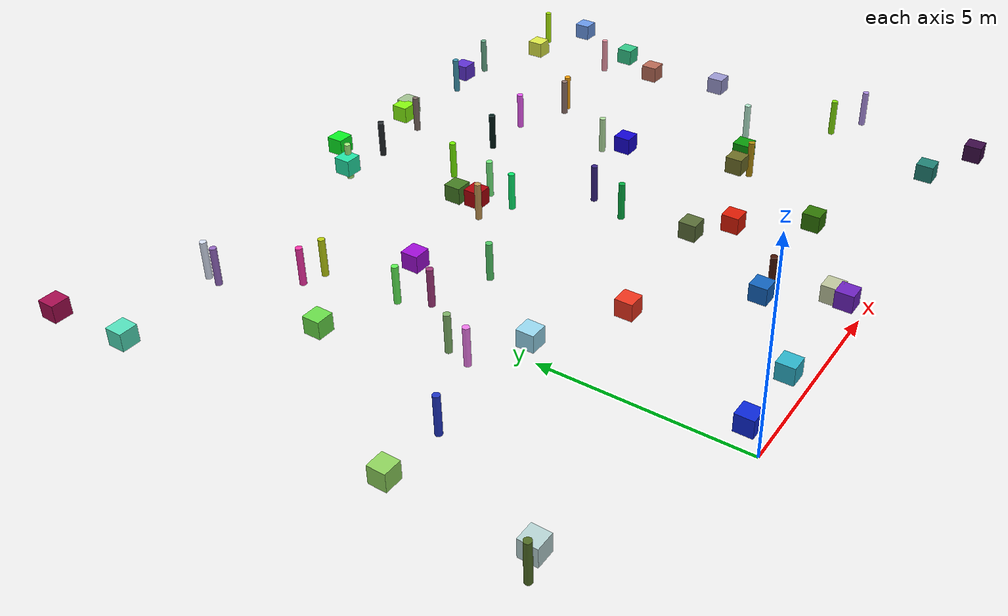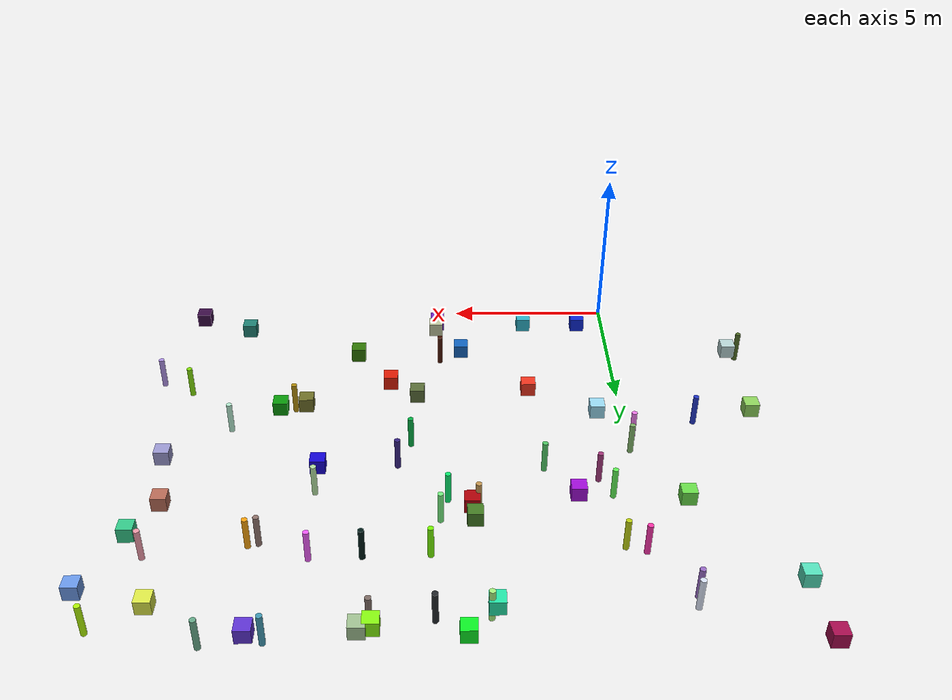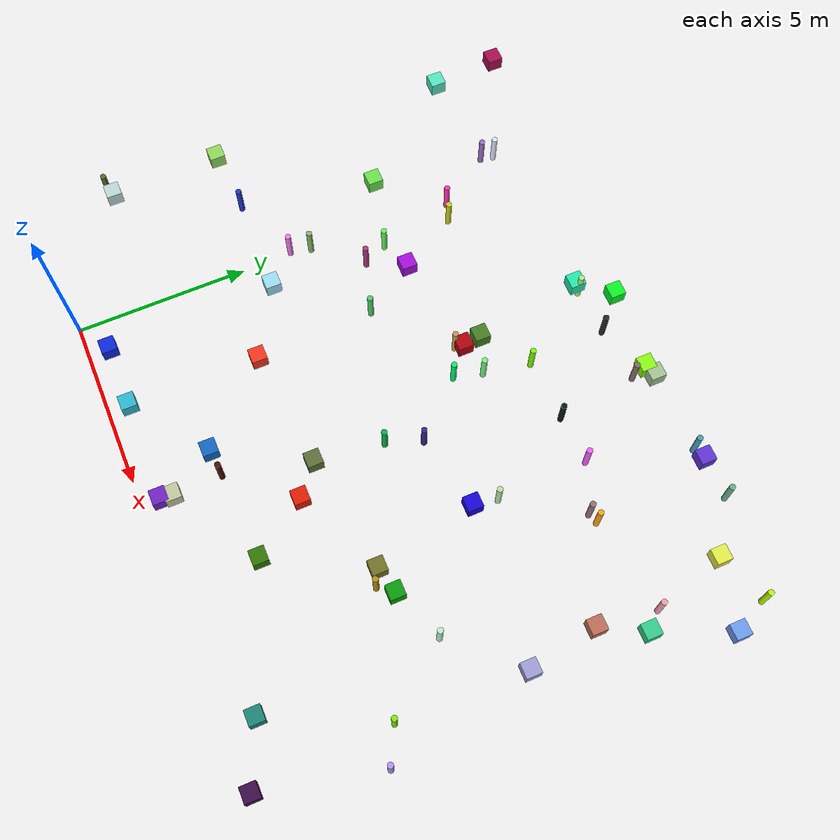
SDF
<sdf version="1.7">
 <world name="warehouse">
  <model name="ground_plane">
   <static>true</static>
   <link name="link">
    <collision name="collision">
     <geometry><plane><normal>0.0 0.0 1</normal><size>1 1</size></plane></geometry>
    </collision>
   </link>
  </model>
  <model name="unit_box_0">
   <static>true</static>
   <pose>4.86 14.7 0 0 0 0</pose>
   <link name="link">
    <collision name="collision">
     <geometry><box><size>0.450000 0.450000 0.450000</size></box></geometry>
    </collision>
    <visual name="visual">
     <geometry><box><size>0.450000 0.450000 0.450000</size></box></geometry>
     <material>
      <ambient>0.0440894479829993 0.9466540511849011 0.1446051926658367 1</ambient>
      <diffuse>0.0440894479829993 0.9466540511849011 0.1446051926658367 1</diffuse>
      <script><uri>file://media/materials/scripts/gazebo.material</uri><name>Gazebo/RandomColor0</name></script>
     </material>
    </visual>
   </link>
  </model>
  <model name="unit_box_1">
   <static>true</static>
   <pose>4.12 13.78 0 0 0 0</pose>
   <link name="link">
    <collision name="collision">
     <geometry><box><size>0.450000 0.450000 0.450000</size></box></geometry>
    </collision>
    <visual name="visual">
     <geometry><box><size>0.450000 0.450000 0.450000</size></box></geometry>
     <material>
      <ambient>0.13936809683720985 0.9011202749563527 0.6622935414420614 1</ambient>
      <diffuse>0.13936809683720985 0.9011202749563527 0.6622935414420614 1</diffuse>
      <script><uri>file://media/materials/scripts/gazebo.material</uri><name>Gazebo/RandomColor1</name></script>
     </material>
    </visual>
   </link>
  </model>
  <model name="unit_cylinder_1">
   <static>true</static>
   <pose>7.35 14.08 0 0 0 0</pose>
   <link name="link">
    <collision name="collision">
     <geometry><cylinder><radius>0.085000</radius><length>1.000000</length></cylinder></geometry>
    </collision>
    <visual name="visual">
     <geometry><cylinder><radius>0.085000</radius><length>1.000000</length></cylinder></geometry>
     <material>
      <ambient>0.4892112773507925 0.4217328960785478 0.3929808659382936 1</ambient>
      <diffuse>0.4892112773507925 0.4217328960785478 0.3929808659382936 1</diffuse>
      <script><uri>file://media/materials/scripts/gazebo.material</uri><name>Gazebo/RandomColor1</name></script>
     </material>
    </visual>
   </link>
  </model>
  <model name="unit_box_2">
   <static>true</static>
   <pose>5.68 0.53 0 0 0 0</pose>
   <link name="link">
    <collision name="collision">
     <geometry><box><size>0.450000 0.450000 0.450000</size></box></geometry>
    </collision>
    <visual name="visual">
     <geometry><box><size>0.450000 0.450000 0.450000</size></box></geometry>
     <material>
      <ambient>0.4295884488853311 0.1320019734991711 0.7548802276800174 1</ambient>
      <diffuse>0.4295884488853311 0.1320019734991711 0.7548802276800174 1</diffuse>
      <script><uri>file://media/materials/scripts/gazebo.material</uri><name>Gazebo/RandomColor2</name></script>
     </material>
    </visual>
   </link>
  </model>
  <model name="unit_cylinder_4">
   <static>true</static>
   <pose>5.69 13.94 0 0 0 0</pose>
   <link name="link">
    <collision name="collision">
     <geometry><cylinder><radius>0.085000</radius><length>1.000000</length></cylinder></geometry>
    </collision>
    <visual name="visual">
     <geometry><cylinder><radius>0.085000</radius><length>1.000000</length></cylinder></geometry>
     <material>
      <ambient>0.1341796096800415 0.15039961002780222 0.16592342121938808 1</ambient>
      <diffuse>0.1341796096800415 0.15039961002780222 0.16592342121938808 1</diffuse>
      <script><uri>file://media/materials/scripts/gazebo.material</uri><name>Gazebo/RandomColor4</name></script>
     </material>
    </visual>
   </link>
  </model>
  <model name="unit_cylinder_5">
   <static>true</static>
   <pose>13.59 4.13 0 0 0 0</pose>
   <link name="link">
    <collision name="collision">
     <geometry><cylinder><radius>0.085000</radius><length>1.000000</length></cylinder></geometry>
    </collision>
    <visual name="visual">
     <geometry><cylinder><radius>0.085000</radius><length>1.000000</length></cylinder></geometry>
     <material>
      <ambient>0.5082832375055166 0.8693185021433103 0.04404943998753352 1</ambient>
      <diffuse>0.5082832375055166 0.8693185021433103 0.04404943998753352 1</diffuse>
      <script><uri>file://media/materials/scripts/gazebo.material</uri><name>Gazebo/RandomColor5</name></script>
     </material>
    </visual>
   </link>
  </model>
  <model name="unit_box_6">
   <static>true</static>
   <pose>0.7 5.61 0 0 0 0</pose>
   <link name="link">
    <collision name="collision">
     <geometry><box><size>0.450000 0.450000 0.450000</size></box></geometry>
    </collision>
    <visual name="visual">
     <geometry><box><size>0.450000 0.450000 0.450000</size></box></geometry>
     <material>
      <ambient>0.6019330902248561 0.8545485791242867 0.9463620129433569 1</ambient>
      <diffuse>0.6019330902248561 0.8545485791242867 0.9463620129433569 1</diffuse>
      <script><uri>file://media/materials/scripts/gazebo.material</uri><name>Gazebo/RandomColor6</name></script>
     </material>
    </visual>
   </link>
  </model>
  <model name="unit_cylinder_7">
   <static>true</static>
   <pose>5.82 11.59 0 0 0 0</pose>
   <link name="link">
    <collision name="collision">
     <geometry><cylinder><radius>0.085000</radius><length>1.000000</length></cylinder></geometry>
    </collision>
    <visual name="visual">
     <geometry><cylinder><radius>0.085000</radius><length>1.000000</length></cylinder></geometry>
     <material>
      <ambient>0.4614413156698295 0.9580878596213448 0.015944803376221728 1</ambient>
      <diffuse>0.4614413156698295 0.9580878596213448 0.015944803376221728 1</diffuse>
      <script><uri>file://media/materials/scripts/gazebo.material</uri><name>Gazebo/RandomColor7</name></script>
     </material>
    </visual>
   </link>
  </model>
  <model name="unit_box_8">
   <static>true</static>
   <pose>4.89 2.23 0 0 0 0</pose>
   <link name="link">
    <collision name="collision">
     <geometry><box><size>0.450000 0.450000 0.450000</size></box></geometry>
    </collision>
    <visual name="visual">
     <geometry><box><size>0.450000 0.450000 0.450000</size></box></geometry>
     <material>
      <ambient>0.0728688957714253 0.39289916852559303 0.7492032021296913 1</ambient>
      <diffuse>0.0728688957714253 0.39289916852559303 0.7492032021296913 1</diffuse>
      <script><uri>file://media/materials/scripts/gazebo.material</uri><name>Gazebo/RandomColor8</name></script>
     </material>
    </visual>
   </link>
  </model>
  <model name="unit_cylinder_8">
   <static>true</static>
   <pose>12.03 6.05 0 0 0 0</pose>
   <link name="link">
    <collision name="collision">
     <geometry><cylinder><radius>0.085000</radius><length>1.000000</length></cylinder></geometry>
    </collision>
    <visual name="visual">
     <geometry><cylinder><radius>0.085000</radius><length>1.000000</length></cylinder></geometry>
     <material>
      <ambient>0.7076495968020946 0.9175697631631726 0.8125382040000438 1</ambient>
      <diffuse>0.7076495968020946 0.9175697631631726 0.8125382040000438 1</diffuse>
      <script><uri>file://media/materials/scripts/gazebo.material</uri><name>Gazebo/RandomColor8</name></script>
     </material>
    </visual>
   </link>
  </model>
  <model name="unit_box_10">
   <static>true</static>
   <pose>4.6 10.53 0 0 0 0</pose>
   <link name="link">
    <collision name="collision">
     <geometry><box><size>0.450000 0.450000 0.450000</size></box></geometry>
    </collision>
    <visual name="visual">
     <geometry><box><size>0.450000 0.450000 0.450000</size></box></geometry>
     <material>
      <ambient>0.268791510697008 0.48887328501884375 0.13953731876235898 1</ambient>
      <diffuse>0.268791510697008 0.48887328501884375 0.13953731876235898 1</diffuse>
      <script><uri>file://media/materials/scripts/gazebo.material</uri><name>Gazebo/RandomColor10</name></script>
     </material>
    </visual>
   </link>
  </model>
  <model name="unit_box_14">
   <static>true</static>
   <pose>10.38 14.68 0 0 0 0</pose>
   <link name="link">
    <collision name="collision">
     <geometry><box><size>0.450000 0.450000 0.450000</size></box></geometry>
    </collision>
    <visual name="visual">
     <geometry><box><size>0.450000 0.450000 0.450000</size></box></geometry>
     <material>
      <ambient>0.3736737728089504 0.19853963764873406 0.8304825299455667 1</ambient>
      <diffuse>0.3736737728089504 0.19853963764873406 0.8304825299455667 1</diffuse>
      <script><uri>file://media/materials/scripts/gazebo.material</uri><name>Gazebo/RandomColor14</name></script>
     </material>
    </visual>
   </link>
  </model>
  <model name="unit_cylinder_14">
   <static>true</static>
   <pose>-0.31 6.53 0 0 0 0</pose>
   <link name="link">
    <collision name="collision">
     <geometry><cylinder><radius>0.085000</radius><length>1.000000</length></cylinder></geometry>
    </collision>
    <visual name="visual">
     <geometry><cylinder><radius>0.085000</radius><length>1.000000</length></cylinder></geometry>
     <material>
      <ambient>0.9418872741472382 0.4807056358799212 0.9225043756003432 1</ambient>
      <diffuse>0.9418872741472382 0.4807056358799212 0.9225043756003432 1</diffuse>
      <script><uri>file://media/materials/scripts/gazebo.material</uri><name>Gazebo/RandomColor14</name></script>
     </material>
    </visual>
   </link>
  </model>
  <model name="unit_box_15">
   <static>true</static>
   <pose>13.41 9.87 0 0 0 0</pose>
   <link name="link">
    <collision name="collision">
     <geometry><box><size>0.450000 0.450000 0.450000</size></box></geometry>
    </collision>
    <visual name="visual">
     <geometry><box><size>0.450000 0.450000 0.450000</size></box></geometry>
     <material>
      <ambient>0.7269252845706303 0.4199841115753088 0.3438289820375734 1</ambient>
      <diffuse>0.7269252845706303 0.4199841115753088 0.3438289820375734 1</diffuse>
      <script><uri>file://media/materials/scripts/gazebo.material</uri><name>Gazebo/RandomColor15</name></script>
     </material>
    </visual>
   </link>
  </model>
  <model name="unit_cylinder_15">
   <static>true</static>
   <pose>0.52 11.32 0 0 0 0</pose>
   <link name="link">
    <collision name="collision">
     <geometry><cylinder><radius>0.085000</radius><length>1.000000</length></cylinder></geometry>
    </collision>
    <visual name="visual">
     <geometry><cylinder><radius>0.085000</radius><length>1.000000</length></cylinder></geometry>
     <material>
      <ambient>0.7412902797736225 0.8152631183749225 0.0652345516483388 1</ambient>
      <diffuse>0.7412902797736225 0.8152631183749225 0.0652345516483388 1</diffuse>
      <script><uri>file://media/materials/scripts/gazebo.material</uri><name>Gazebo/RandomColor15</name></script>
     </material>
    </visual>
   </link>
  </model>
  <model name="unit_box_16">
   <static>true</static>
   <pose>7.62 14.58 0 0 0 0</pose>
   <link name="link">
    <collision name="collision">
     <geometry><box><size>0.450000 0.450000 0.450000</size></box></geometry>
    </collision>
    <visual name="visual">
     <geometry><box><size>0.450000 0.450000 0.450000</size></box></geometry>
     <material>
      <ambient>0.6364192580588337 0.7606513629192436 0.5742180573632772 1</ambient>
      <diffuse>0.6364192580588337 0.7606513629192436 0.5742180573632772 1</diffuse>
      <script><uri>file://media/materials/scripts/gazebo.material</uri><name>Gazebo/RandomColor16</name></script>
     </material>
    </visual>
   </link>
  </model>
  <model name="unit_cylinder_16">
   <static>true</static>
   <pose>0.6 9.2 0 0 0 0</pose>
   <link name="link">
    <collision name="collision">
     <geometry><cylinder><radius>0.085000</radius><length>1.000000</length></cylinder></geometry>
    </collision>
    <visual name="visual">
     <geometry><cylinder><radius>0.085000</radius><length>1.000000</length></cylinder></geometry>
     <material>
      <ambient>0.3779723460318357 0.9465149101639637 0.336937077792953 1</ambient>
      <diffuse>0.3779723460318357 0.9465149101639637 0.336937077792953 1</diffuse>
      <script><uri>file://media/materials/scripts/gazebo.material</uri><name>Gazebo/RandomColor16</name></script>
     </material>
    </visual>
   </link>
  </model>
  <model name="unit_cylinder_17">
   <static>true</static>
   <pose>14.59 3.61 0 0 0 0</pose>
   <link name="link">
    <collision name="collision">
     <geometry><cylinder><radius>0.085000</radius><length>1.000000</length></cylinder></geometry>
    </collision>
    <visual name="visual">
     <geometry><cylinder><radius>0.085000</radius><length>1.000000</length></cylinder></geometry>
     <material>
      <ambient>0.6854748888082745 0.5704663235262069 0.9003668782187838 1</ambient>
      <diffuse>0.6854748888082745 0.5704663235262069 0.9003668782187838 1</diffuse>
      <script><uri>file://media/materials/scripts/gazebo.material</uri><name>Gazebo/RandomColor17</name></script>
     </material>
    </visual>
   </link>
  </model>
  <model name="unit_box_20">
   <static>true</static>
   <pose>-4.14 14.88 0 0 0 0</pose>
   <link name="link">
    <collision name="collision">
     <geometry><box><size>0.450000 0.450000 0.450000</size></box></geometry>
    </collision>
    <visual name="visual">
     <geometry><box><size>0.450000 0.450000 0.450000</size></box></geometry>
     <material>
      <ambient>0.6570899015671107 0.04959333228282392 0.3146562197480839 1</ambient>
      <diffuse>0.6570899015671107 0.04959333228282392 0.3146562197480839 1</diffuse>
      <script><uri>file://media/materials/scripts/gazebo.material</uri><name>Gazebo/RandomColor20</name></script>
     </material>
    </visual>
   </link>
  </model>
  <model name="unit_box_24">
   <static>true</static>
   <pose>10.55 5.42 0 0 0 0</pose>
   <link name="link">
    <collision name="collision">
     <geometry><box><size>0.450000 0.450000 0.450000</size></box></geometry>
    </collision>
    <visual name="visual">
     <geometry><box><size>0.450000 0.450000 0.450000</size></box></geometry>
     <material>
      <ambient>0.03565029373189332 0.5989503622130179 0.0420726247608354 1</ambient>
      <diffuse>0.03565029373189332 0.5989503622130179 0.0420726247608354 1</diffuse>
      <script><uri>file://media/materials/scripts/gazebo.material</uri><name>Gazebo/RandomColor24</name></script>
     </material>
    </visual>
   </link>
  </model>
  <model name="unit_cylinder_28">
   <static>true</static>
   <pose>13.6 11.66 0 0 0 0</pose>
   <link name="link">
    <collision name="collision">
     <geometry><cylinder><radius>0.085000</radius><length>1.000000</length></cylinder></geometry>
    </collision>
    <visual name="visual">
     <geometry><cylinder><radius>0.085000</radius><length>1.000000</length></cylinder></geometry>
     <material>
      <ambient>0.9450633978795633 0.6034795276451796 0.6650146412647179 1</ambient>
      <diffuse>0.9450633978795633 0.6034795276451796 0.6650146412647179 1</diffuse>
      <script><uri>file://media/materials/scripts/gazebo.material</uri><name>Gazebo/RandomColor28</name></script>
     </material>
    </visual>
   </link>
  </model>
  <model name="unit_box_30">
   <static>true</static>
   <pose>12.12 0.94 0 0 0 0</pose>
   <link name="link">
    <collision name="collision">
     <geometry><box><size>0.450000 0.450000 0.450000</size></box></geometry>
    </collision>
    <visual name="visual">
     <geometry><box><size>0.450000 0.450000 0.450000</size></box></geometry>
     <material>
      <ambient>0.1262649929110924 0.5088441445926486 0.4569205889202308 1</ambient>
      <diffuse>0.1262649929110924 0.5088441445926486 0.4569205889202308 1</diffuse>
      <script><uri>file://media/materials/scripts/gazebo.material</uri><name>Gazebo/RandomColor30</name></script>
     </material>
    </visual>
   </link>
  </model>
  <model name="unit_box_33">
   <static>true</static>
   <pose>8.29 2.44 0 0 0 0</pose>
   <link name="link">
    <collision name="collision">
     <geometry><box><size>0.450000 0.450000 0.450000</size></box></geometry>
    </collision>
    <visual name="visual">
     <geometry><box><size>0.450000 0.450000 0.450000</size></box></geometry>
     <material>
      <ambient>0.18711976532304309 0.4617155787571732 0.017472911622984033 1</ambient>
      <diffuse>0.18711976532304309 0.4617155787571732 0.017472911622984033 1</diffuse>
      <script><uri>file://media/materials/scripts/gazebo.material</uri><name>Gazebo/RandomColor33</name></script>
     </material>
    </visual>
   </link>
  </model>
  <model name="unit_box_34">
   <static>true</static>
   <pose>9.14 8.27 0 0 0 0</pose>
   <link name="link">
    <collision name="collision">
     <geometry><box><size>0.450000 0.450000 0.450000</size></box></geometry>
    </collision>
    <visual name="visual">
     <geometry><box><size>0.450000 0.450000 0.450000</size></box></geometry>
     <material>
      <ambient>0.08294982361074021 0.017492213763030007 0.8345571434948097 1</ambient>
      <diffuse>0.08294982361074021 0.017492213763030007 0.8345571434948097 1</diffuse>
      <script><uri>file://media/materials/scripts/gazebo.material</uri><name>Gazebo/RandomColor34</name></script>
     </material>
    </visual>
   </link>
  </model>
  <model name="unit_box_35">
   <static>true</static>
   <pose>7.28 14.46 0 0 0 0</pose>
   <link name="link">
    <collision name="collision">
     <geometry><box><size>0.450000 0.450000 0.450000</size></box></geometry>
    </collision>
    <visual name="visual">
     <geometry><box><size>0.450000 0.450000 0.450000</size></box></geometry>
     <material>
      <ambient>0.5328889667552716 0.9778394850203899 0.06306308018818785 1</ambient>
      <diffuse>0.5328889667552716 0.9778394850203899 0.06306308018818785 1</diffuse>
      <script><uri>file://media/materials/scripts/gazebo.material</uri><name>Gazebo/RandomColor35</name></script>
     </material>
    </visual>
   </link>
  </model>
  <model name="unit_cylinder_35">
   <static>true</static>
   <pose>9.96 14.66 0 0 0 0</pose>
   <link name="link">
    <collision name="collision">
     <geometry><cylinder><radius>0.085000</radius><length>1.000000</length></cylinder></geometry>
    </collision>
    <visual name="visual">
     <geometry><cylinder><radius>0.085000</radius><length>1.000000</length></cylinder></geometry>
     <material>
      <ambient>0.2553053584827033 0.5998856890927203 0.7008868678524688 1</ambient>
      <diffuse>0.2553053584827033 0.5998856890927203 0.7008868678524688 1</diffuse>
      <script><uri>file://media/materials/scripts/gazebo.material</uri><name>Gazebo/RandomColor35</name></script>
     </material>
    </visual>
   </link>
  </model>
  <model name="unit_cylinder_38">
   <static>true</static>
   <pose>5.56 10.21 0 0 0 0</pose>
   <link name="link">
    <collision name="collision">
     <geometry><cylinder><radius>0.085000</radius><length>1.000000</length></cylinder></geometry>
    </collision>
    <visual name="visual">
     <geometry><cylinder><radius>0.085000</radius><length>1.000000</length></cylinder></geometry>
     <material>
      <ambient>0.4530497376460403 0.9323506290617465 0.4990316888274886 1</ambient>
      <diffuse>0.4530497376460403 0.9323506290617465 0.4990316888274886 1</diffuse>
      <script><uri>file://media/materials/scripts/gazebo.material</uri><name>Gazebo/RandomColor38</name></script>
     </material>
    </visual>
   </link>
  </model>
  <model name="unit_box_39">
   <static>true</static>
   <pose>-4.04 2.27 0 0 0 0</pose>
   <link name="link">
    <collision name="collision">
     <geometry><box><size>0.450000 0.450000 0.450000</size></box></geometry>
    </collision>
    <visual name="visual">
     <geometry><box><size>0.450000 0.450000 0.450000</size></box></geometry>
     <material>
      <ambient>0.7262858407844777 0.8373444978655086 0.8372408043928516 1</ambient>
      <diffuse>0.7262858407844777 0.8373444978655086 0.8372408043928516 1</diffuse>
      <script><uri>file://media/materials/scripts/gazebo.material</uri><name>Gazebo/RandomColor39</name></script>
     </material>
    </visual>
   </link>
  </model>
  <model name="unit_box_41">
   <static>true</static>
   <pose>13.01 13.73 0 0 0 0</pose>
   <link name="link">
    <collision name="collision">
     <geometry><box><size>0.450000 0.450000 0.450000</size></box></geometry>
    </collision>
    <visual name="visual">
     <geometry><box><size>0.450000 0.450000 0.450000</size></box></geometry>
     <material>
      <ambient>0.8751461923420513 0.9222468184287601 0.2808396718565699 1</ambient>
      <diffuse>0.8751461923420513 0.9222468184287601 0.2808396718565699 1</diffuse>
      <script><uri>file://media/materials/scripts/gazebo.material</uri><name>Gazebo/RandomColor41</name></script>
     </material>
    </visual>
   </link>
  </model>
  <model name="unit_box_42">
   <static>true</static>
   <pose>14.06 11.11 0 0 0 0</pose>
   <link name="link">
    <collision name="collision">
     <geometry><box><size>0.450000 0.450000 0.450000</size></box></geometry>
    </collision>
    <visual name="visual">
     <geometry><box><size>0.450000 0.450000 0.450000</size></box></geometry>
     <material>
      <ambient>0.1996029650727238 0.7874224487228431 0.5415095845352997 1</ambient>
      <diffuse>0.1996029650727238 0.7874224487228431 0.5415095845352997 1</diffuse>
      <script><uri>file://media/materials/scripts/gazebo.material</uri><name>Gazebo/RandomColor42</name></script>
     </material>
    </visual>
   </link>
  </model>
  <model name="unit_cylinder_43">
   <static>true</static>
   <pose>9.18 9.03 0 0 0 0</pose>
   <link name="link">
    <collision name="collision">
     <geometry><cylinder><radius>0.085000</radius><length>1.000000</length></cylinder></geometry>
    </collision>
    <visual name="visual">
     <geometry><cylinder><radius>0.085000</radius><length>1.000000</length></cylinder></geometry>
     <material>
      <ambient>0.7015308310497798 0.8795526308912183 0.6302705016856848 1</ambient>
      <diffuse>0.7015308310497798 0.8795526308912183 0.6302705016856848 1</diffuse>
      <script><uri>file://media/materials/scripts/gazebo.material</uri><name>Gazebo/RandomColor43</name></script>
     </material>
    </visual>
   </link>
  </model>
  <model name="unit_box_46">
   <static>true</static>
   <pose>2.77 4.43 0 0 0 0</pose>
   <link name="link">
    <collision name="collision">
     <geometry><box><size>0.450000 0.450000 0.450000</size></box></geometry>
    </collision>
    <visual name="visual">
     <geometry><box><size>0.450000 0.450000 0.450000</size></box></geometry>
     <material>
      <ambient>0.9382377930300699 0.2091869800104431 0.12133958984988436 1</ambient>
      <diffuse>0.9382377930300699 0.2091869800104431 0.12133958984988436 1</diffuse>
      <script><uri>file://media/materials/scripts/gazebo.material</uri><name>Gazebo/RandomColor46</name></script>
     </material>
    </visual>
   </link>
  </model>
  <model name="unit_cylinder_46">
   <static>true</static>
   <pose>5.35 9.37 0 0 0 0</pose>
   <link name="link">
    <collision name="collision">
     <geometry><cylinder><radius>0.085000</radius><length>1.000000</length></cylinder></geometry>
    </collision>
    <visual name="visual">
     <geometry><cylinder><radius>0.085000</radius><length>1.000000</length></cylinder></geometry>
     <material>
      <ambient>0.03834097430767203 0.9148364178171329 0.4316729430559001 1</ambient>
      <diffuse>0.03834097430767203 0.9148364178171329 0.4316729430559001 1</diffuse>
      <script><uri>file://media/materials/scripts/gazebo.material</uri><name>Gazebo/RandomColor46</name></script>
     </material>
    </visual>
   </link>
  </model>
  <model name="unit_box_48">
   <static>true</static>
   <pose>9.76 5.24 0 0 0 0</pose>
   <link name="link">
    <collision name="collision">
     <geometry><box><size>0.450000 0.450000 0.450000</size></box></geometry>
    </collision>
    <visual name="visual">
     <geometry><box><size>0.450000 0.450000 0.450000</size></box></geometry>
     <material>
      <ambient>0.43426315506928836 0.43765146222135176 0.15739209331830217 1</ambient>
      <diffuse>0.43426315506928836 0.43765146222135176 0.15739209331830217 1</diffuse>
      <script><uri>file://media/materials/scripts/gazebo.material</uri><name>Gazebo/RandomColor48</name></script>
     </material>
    </visual>
   </link>
  </model>
  <model name="unit_box_49">
   <static>true</static>
   <pose>13.75 7.83 0 0 0 0</pose>
   <link name="link">
    <collision name="collision">
     <geometry><box><size>0.450000 0.450000 0.450000</size></box></geometry>
    </collision>
    <visual name="visual">
     <geometry><box><size>0.450000 0.450000 0.450000</size></box></geometry>
     <material>
      <ambient>0.6138290061080736 0.6044545961948288 0.8261324101380222 1</ambient>
      <diffuse>0.6138290061080736 0.6044545961948288 0.8261324101380222 1</diffuse>
      <script><uri>file://media/materials/scripts/gazebo.material</uri><name>Gazebo/RandomColor49</name></script>
     </material>
    </visual>
   </link>
  </model>
  <model name="unit_cylinder_50">
   <static>true</static>
   <pose>4.26 13.86 0 0 0 0</pose>
   <link name="link">
    <collision name="collision">
     <geometry><cylinder><radius>0.085000</radius><length>1.000000</length></cylinder></geometry>
    </collision>
    <visual name="visual">
     <geometry><cylinder><radius>0.085000</radius><length>1.000000</length></cylinder></geometry>
     <material>
      <ambient>0.6499532379629434 0.9478713151061529 0.4876646140899925 1</ambient>
      <diffuse>0.6499532379629434 0.9478713151061529 0.4876646140899925 1</diffuse>
      <script><uri>file://media/materials/scripts/gazebo.material</uri><name>Gazebo/RandomColor50</name></script>
     </material>
    </visual>
   </link>
  </model>
  <model name="unit_cylinder_51">
   <static>true</static>
   <pose>10.15 5.03 0 0 0 0</pose>
   <link name="link">
    <collision name="collision">
     <geometry><cylinder><radius>0.085000</radius><length>1.000000</length></cylinder></geometry>
    </collision>
    <visual name="visual">
     <geometry><cylinder><radius>0.085000</radius><length>1.000000</length></cylinder></geometry>
     <material>
      <ambient>0.6979330582197937 0.5541800275363761 0.058286147091762275 1</ambient>
      <diffuse>0.6979330582197937 0.5541800275363761 0.058286147091762275 1</diffuse>
      <script><uri>file://media/materials/scripts/gazebo.material</uri><name>Gazebo/RandomColor51</name></script>
     </material>
    </visual>
   </link>
  </model>
  <model name="unit_box_52">
   <static>true</static>
   <pose>-1.42 9.68 0 0 0 0</pose>
   <link name="link">
    <collision name="collision">
     <geometry><box><size>0.450000 0.450000 0.450000</size></box></geometry>
    </collision>
    <visual name="visual">
     <geometry><box><size>0.450000 0.450000 0.450000</size></box></geometry>
     <material>
      <ambient>0.41705411825994476 0.8730299736676725 0.29307417445129613 1</ambient>
      <diffuse>0.41705411825994476 0.8730299736676725 0.29307417445129613 1</diffuse>
      <script><uri>file://media/materials/scripts/gazebo.material</uri><name>Gazebo/RandomColor52</name></script>
     </material>
    </visual>
   </link>
  </model>
  <model name="unit_box_55">
   <static>true</static>
   <pose>-4.1 5.57 0 0 0 0</pose>
   <link name="link">
    <collision name="collision">
     <geometry><box><size>0.450000 0.450000 0.450000</size></box></geometry>
    </collision>
    <visual name="visual">
     <geometry><box><size>0.450000 0.450000 0.450000</size></box></geometry>
     <material>
      <ambient>0.5620351849761903 0.8354409235829442 0.3652875641465163 1</ambient>
      <diffuse>0.5620351849761903 0.8354409235829442 0.3652875641465163 1</diffuse>
      <script><uri>file://media/materials/scripts/gazebo.material</uri><name>Gazebo/RandomColor55</name></script>
     </material>
    </visual>
   </link>
  </model>
  <model name="unit_box_60">
   <static>true</static>
   <pose>-3.99 12.86 0 0 0 0</pose>
   <link name="link">
    <collision name="collision">
     <geometry><box><size>0.450000 0.450000 0.450000</size></box></geometry>
    </collision>
    <visual name="visual">
     <geometry><box><size>0.450000 0.450000 0.450000</size></box></geometry>
     <material>
      <ambient>0.32947072037927405 0.8859247522868862 0.7412224001857882 1</ambient>
      <diffuse>0.32947072037927405 0.8859247522868862 0.7412224001857882 1</diffuse>
      <script><uri>file://media/materials/scripts/gazebo.material</uri><name>Gazebo/RandomColor60</name></script>
     </material>
    </visual>
   </link>
  </model>
  <model name="unit_cylinder_61">
   <static>true</static>
   <pose>10.52 11.14 0 0 0 0</pose>
   <link name="link">
    <collision name="collision">
     <geometry><cylinder><radius>0.085000</radius><length>1.000000</length></cylinder></geometry>
    </collision>
    <visual name="visual">
     <geometry><cylinder><radius>0.085000</radius><length>1.000000</length></cylinder></geometry>
     <material>
      <ambient>0.5591438264466979 0.45074952959279024 0.4230473679867929 1</ambient>
      <diffuse>0.5591438264466979 0.45074952959279024 0.4230473679867929 1</diffuse>
      <script><uri>file://media/materials/scripts/gazebo.material</uri><name>Gazebo/RandomColor61</name></script>
     </material>
    </visual>
   </link>
  </model>
  <model name="unit_cylinder_64">
   <static>true</static>
   <pose>6.83 7.83 0 0 0 0</pose>
   <link name="link">
    <collision name="collision">
     <geometry><cylinder><radius>0.085000</radius><length>1.000000</length></cylinder></geometry>
    </collision>
    <visual name="visual">
     <geometry><cylinder><radius>0.085000</radius><length>1.000000</length></cylinder></geometry>
     <material>
      <ambient>0.21781864250185545 0.13864176028381958 0.5163741713186796 1</ambient>
      <diffuse>0.21781864250185545 0.13864176028381958 0.5163741713186796 1</diffuse>
      <script><uri>file://media/materials/scripts/gazebo.material</uri><name>Gazebo/RandomColor64</name></script>
     </material>
    </visual>
   </link>
  </model>
  <model name="unit_box_67">
   <static>true</static>
   <pose>1.65 9.5 0 0 0 0</pose>
   <link name="link">
    <collision name="collision">
     <geometry><box><size>0.450000 0.450000 0.450000</size></box></geometry>
    </collision>
    <visual name="visual">
     <geometry><box><size>0.450000 0.450000 0.450000</size></box></geometry>
     <material>
      <ambient>0.6329735939871796 0.05337530947951352 0.8500493781590944 1</ambient>
      <diffuse>0.6329735939871796 0.05337530947951352 0.8500493781590944 1</diffuse>
      <script><uri>file://media/materials/scripts/gazebo.material</uri><name>Gazebo/RandomColor67</name></script>
     </material>
    </visual>
   </link>
  </model>
  <model name="unit_cylinder_68">
   <static>true</static>
   <pose>-4.4 2.16 0 0 0 0</pose>
   <link name="link">
    <collision name="collision">
     <geometry><cylinder><radius>0.085000</radius><length>1.000000</length></cylinder></geometry>
    </collision>
    <visual name="visual">
     <geometry><cylinder><radius>0.085000</radius><length>1.000000</length></cylinder></geometry>
     <material>
      <ambient>0.3148413763857836 0.42712246202537874 0.14888218938271092 1</ambient>
      <diffuse>0.3148413763857836 0.42712246202537874 0.14888218938271092 1</diffuse>
      <script><uri>file://media/materials/scripts/gazebo.material</uri><name>Gazebo/RandomColor68</name></script>
     </material>
    </visual>
   </link>
  </model>
  <model name="unit_box_69">
   <static>true</static>
   <pose>14.96 13.23 0 0 0 0</pose>
   <link name="link">
    <collision name="collision">
     <geometry><box><size>0.450000 0.450000 0.450000</size></box></geometry>
    </collision>
    <visual name="visual">
     <geometry><box><size>0.450000 0.450000 0.450000</size></box></geometry>
     <material>
      <ambient>0.41825174061113646 0.6042144253977422 0.9198216400802369 1</ambient>
      <diffuse>0.41825174061113646 0.6042144253977422 0.9198216400802369 1</diffuse>
      <script><uri>file://media/materials/scripts/gazebo.material</uri><name>Gazebo/RandomColor69</name></script>
     </material>
    </visual>
   </link>
  </model>
  <model name="unit_cylinder_69">
   <static>true</static>
   <pose>-0.03 11.5 0 0 0 0</pose>
   <link name="link">
    <collision name="collision">
     <geometry><cylinder><radius>0.085000</radius><length>1.000000</length></cylinder></geometry>
    </collision>
    <visual name="visual">
     <geometry><cylinder><radius>0.085000</radius><length>1.000000</length></cylinder></geometry>
     <material>
      <ambient>0.973455147800084 0.20016005036697881 0.6639269370994789 1</ambient>
      <diffuse>0.973455147800084 0.20016005036697881 0.6639269370994789 1</diffuse>
      <script><uri>file://media/materials/scripts/gazebo.material</uri><name>Gazebo/RandomColor69</name></script>
     </material>
    </visual>
   </link>
  </model>
  <model name="unit_cylinder_70">
   <static>true</static>
   <pose>2.5 7.99 0 0 0 0</pose>
   <link name="link">
    <collision name="collision">
     <geometry><cylinder><radius>0.085000</radius><length>1.000000</length></cylinder></geometry>
    </collision>
    <visual name="visual">
     <geometry><cylinder><radius>0.085000</radius><length>1.000000</length></cylinder></geometry>
     <material>
      <ambient>0.3151386668784719 0.781979888282599 0.4003769260625333 1</ambient>
      <diffuse>0.3151386668784719 0.781979888282599 0.4003769260625333 1</diffuse>
      <script><uri>file://media/materials/scripts/gazebo.material</uri><name>Gazebo/RandomColor70</name></script>
     </material>
    </visual>
   </link>
  </model>
  <model name="unit_cylinder_72">
   <static>true</static>
   <pose>-2.33 5.72 0 0 0 0</pose>
   <link name="link">
    <collision name="collision">
     <geometry><cylinder><radius>0.085000</radius><length>1.000000</length></cylinder></geometry>
    </collision>
    <visual name="visual">
     <geometry><cylinder><radius>0.085000</radius><length>1.000000</length></cylinder></geometry>
     <material>
      <ambient>0.1288517659170587 0.20978776238071928 0.7723692950585812 1</ambient>
      <diffuse>0.1288517659170587 0.20978776238071928 0.7723692950585812 1</diffuse>
      <script><uri>file://media/materials/scripts/gazebo.material</uri><name>Gazebo/RandomColor72</name></script>
     </material>
    </visual>
   </link>
  </model>
  <model name="unit_box_73">
   <static>true</static>
   <pose>2.71 0.59 0 0 0 0</pose>
   <link name="link">
    <collision name="collision">
     <geometry><box><size>0.450000 0.450000 0.450000</size></box></geometry>
    </collision>
    <visual name="visual">
     <geometry><box><size>0.450000 0.450000 0.450000</size></box></geometry>
     <material>
      <ambient>0.17904035445789157 0.7088021854577506 0.7991653825503653 1</ambient>
      <diffuse>0.17904035445789157 0.7088021854577506 0.7991653825503653 1</diffuse>
      <script><uri>file://media/materials/scripts/gazebo.material</uri><name>Gazebo/RandomColor73</name></script>
     </material>
    </visual>
   </link>
  </model>
  <model name="unit_cylinder_73">
   <static>true</static>
   <pose>6.46 6.8 0 0 0 0</pose>
   <link name="link">
    <collision name="collision">
     <geometry><cylinder><radius>0.085000</radius><length>1.000000</length></cylinder></geometry>
    </collision>
    <visual name="visual">
     <geometry><cylinder><radius>0.085000</radius><length>1.000000</length></cylinder></geometry>
     <material>
      <ambient>0.021156796711129577 0.6835858650709448 0.2671411018729757 1</ambient>
      <diffuse>0.021156796711129577 0.6835858650709448 0.2671411018729757 1</diffuse>
      <script><uri>file://media/materials/scripts/gazebo.material</uri><name>Gazebo/RandomColor73</name></script>
     </material>
    </visual>
   </link>
  </model>
  <model name="unit_box_77">
   <static>true</static>
   <pose>7.16 4.05 0 0 0 0</pose>
   <link name="link">
    <collision name="collision">
     <geometry><box><size>0.450000 0.450000 0.450000</size></box></geometry>
    </collision>
    <visual name="visual">
     <geometry><box><size>0.450000 0.450000 0.450000</size></box></geometry>
     <material>
      <ambient>0.8707302074808251 0.10957651702185334 0.023351282105384064 1</ambient>
      <diffuse>0.8707302074808251 0.10957651702185334 0.023351282105384064 1</diffuse>
      <script><uri>file://media/materials/scripts/gazebo.material</uri><name>Gazebo/RandomColor77</name></script>
     </material>
    </visual>
   </link>
  </model>
  <model name="unit_cylinder_77">
   <static>true</static>
   <pose>-0.17 7.14 0 0 0 0</pose>
   <link name="link">
    <collision name="collision">
     <geometry><cylinder><radius>0.085000</radius><length>1.000000</length></cylinder></geometry>
    </collision>
    <visual name="visual">
     <geometry><cylinder><radius>0.085000</radius><length>1.000000</length></cylinder></geometry>
     <material>
      <ambient>0.4995297586248154 0.701822583249537 0.40831048066855935 1</ambient>
      <diffuse>0.4995297586248154 0.701822583249537 0.40831048066855935 1</diffuse>
      <script><uri>file://media/materials/scripts/gazebo.material</uri><name>Gazebo/RandomColor77</name></script>
     </material>
    </visual>
   </link>
  </model>
  <model name="unit_cylinder_78">
   <static>true</static>
   <pose>10.81 11.23 0 0 0 0</pose>
   <link name="link">
    <collision name="collision">
     <geometry><cylinder><radius>0.085000</radius><length>1.000000</length></cylinder></geometry>
    </collision>
    <visual name="visual">
     <geometry><cylinder><radius>0.085000</radius><length>1.000000</length></cylinder></geometry>
     <material>
      <ambient>0.963721722893207 0.6308082697632318 0.05372301614379216 1</ambient>
      <diffuse>0.963721722893207 0.6308082697632318 0.05372301614379216 1</diffuse>
      <script><uri>file://media/materials/scripts/gazebo.material</uri><name>Gazebo/RandomColor78</name></script>
     </material>
    </visual>
   </link>
  </model>
  <model name="unit_cylinder_79">
   <static>true</static>
   <pose>9.12 11.73 0 0 0 0</pose>
   <link name="link">
    <collision name="collision">
     <geometry><cylinder><radius>0.085000</radius><length>1.000000</length></cylinder></geometry>
    </collision>
    <visual name="visual">
     <geometry><cylinder><radius>0.085000</radius><length>1.000000</length></cylinder></geometry>
     <material>
      <ambient>0.940776490586015 0.35920469004489175 0.9764336070977291 1</ambient>
      <diffuse>0.940776490586015 0.35920469004489175 0.9764336070977291 1</diffuse>
      <script><uri>file://media/materials/scripts/gazebo.material</uri><name>Gazebo/RandomColor79</name></script>
     </material>
    </visual>
   </link>
  </model>
  <model name="unit_box_82">
   <static>true</static>
   <pose>13.81 0.21 0 0 0 0</pose>
   <link name="link">
    <collision name="collision">
     <geometry><box><size>0.450000 0.450000 0.450000</size></box></geometry>
    </collision>
    <visual name="visual">
     <geometry><box><size>0.450000 0.450000 0.450000</size></box></geometry>
     <material>
      <ambient>0.2327501894734364 0.04809678260518657 0.2781696227659629 1</ambient>
      <diffuse>0.2327501894734364 0.04809678260518657 0.2781696227659629 1</diffuse>
      <script><uri>file://media/materials/scripts/gazebo.material</uri><name>Gazebo/RandomColor82</name></script>
     </material>
    </visual>
   </link>
  </model>
  <model name="unit_cylinder_82">
   <static>true</static>
   <pose>5.58 2.29 0 0 0 0</pose>
   <link name="link">
    <collision name="collision">
     <geometry><cylinder><radius>0.085000</radius><length>1.000000</length></cylinder></geometry>
    </collision>
    <visual name="visual">
     <geometry><cylinder><radius>0.085000</radius><length>1.000000</length></cylinder></geometry>
     <material>
      <ambient>0.2677102811000529 0.07520779788343668 0.018102602961244885 1</ambient>
      <diffuse>0.2677102811000529 0.07520779788343668 0.018102602961244885 1</diffuse>
      <script><uri>file://media/materials/scripts/gazebo.material</uri><name>Gazebo/RandomColor82</name></script>
     </material>
    </visual>
   </link>
  </model>
  <model name="unit_box_83">
   <static>true</static>
   <pose>0.84 0.6 0 0 0 0</pose>
   <link name="link">
    <collision name="collision">
     <geometry><box><size>0.450000 0.450000 0.450000</size></box></geometry>
    </collision>
    <visual name="visual">
     <geometry><box><size>0.450000 0.450000 0.450000</size></box></geometry>
     <material>
      <ambient>0.04732768415448296 0.15459270405566372 0.8500895698962153 1</ambient>
      <diffuse>0.04732768415448296 0.15459270405566372 0.8500895698962153 1</diffuse>
      <script><uri>file://media/materials/scripts/gazebo.material</uri><name>Gazebo/RandomColor83</name></script>
     </material>
    </visual>
   </link>
  </model>
  <model name="unit_cylinder_83">
   <static>true</static>
   <pose>7.67 11.66 0 0 0 0</pose>
   <link name="link">
    <collision name="collision">
     <geometry><cylinder><radius>0.085000</radius><length>1.000000</length></cylinder></geometry>
    </collision>
    <visual name="visual">
     <geometry><cylinder><radius>0.085000</radius><length>1.000000</length></cylinder></geometry>
     <material>
      <ambient>0.0007100825723914683 0.09904566922674607 0.08486607899984433 1</ambient>
      <diffuse>0.0007100825723914683 0.09904566922674607 0.08486607899984433 1</diffuse>
      <script><uri>file://media/materials/scripts/gazebo.material</uri><name>Gazebo/RandomColor83</name></script>
     </material>
    </visual>
   </link>
  </model>
  <model name="unit_cylinder_84">
   <static>true</static>
   <pose>11.54 14.79 0 0 0 0</pose>
   <link name="link">
    <collision name="collision">
     <geometry><cylinder><radius>0.085000</radius><length>1.000000</length></cylinder></geometry>
    </collision>
    <visual name="visual">
     <geometry><cylinder><radius>0.085000</radius><length>1.000000</length></cylinder></geometry>
     <material>
      <ambient>0.4051637939517959 0.6688836173578244 0.5415397905480377 1</ambient>
      <diffuse>0.4051637939517959 0.6688836173578244 0.5415397905480377 1</diffuse>
      <script><uri>file://media/materials/scripts/gazebo.material</uri><name>Gazebo/RandomColor84</name></script>
     </material>
    </visual>
   </link>
  </model>
  <model name="unit_cylinder_85">
   <static>true</static>
   <pose>4.49 9.79 0 0 0 0</pose>
   <link name="link">
    <collision name="collision">
     <geometry><cylinder><radius>0.085000</radius><length>1.000000</length></cylinder></geometry>
    </collision>
    <visual name="visual">
     <geometry><cylinder><radius>0.085000</radius><length>1.000000</length></cylinder></geometry>
     <material>
      <ambient>0.767616102607897 0.589518632222546 0.32072238671627906 1</ambient>
      <diffuse>0.767616102607897 0.589518632222546 0.32072238671627906 1</diffuse>
      <script><uri>file://media/materials/scripts/gazebo.material</uri><name>Gazebo/RandomColor85</name></script>
     </material>
    </visual>
   </link>
  </model>
  <model name="unit_cylinder_91">
   <static>true</static>
   <pose>-1.11 13.13 0 0 0 0</pose>
   <link name="link">
    <collision name="collision">
     <geometry><cylinder><radius>0.085000</radius><length>1.000000</length></cylinder></geometry>
    </collision>
    <visual name="visual">
     <geometry><cylinder><radius>0.085000</radius><length>1.000000</length></cylinder></geometry>
     <material>
      <ambient>0.5944705562143835 0.4185105132766572 0.7728941738685379 1</ambient>
      <diffuse>0.5944705562143835 0.4185105132766572 0.7728941738685379 1</diffuse>
      <script><uri>file://media/materials/scripts/gazebo.material</uri><name>Gazebo/RandomColor91</name></script>
     </material>
    </visual>
   </link>
  </model>
  <model name="unit_cylinder_92">
   <static>true</static>
   <pose>-1.05 13.52 0 0 0 0</pose>
   <link name="link">
    <collision name="collision">
     <geometry><cylinder><radius>0.085000</radius><length>1.000000</length></cylinder></geometry>
    </collision>
    <visual name="visual">
     <geometry><cylinder><radius>0.085000</radius><length>1.000000</length></cylinder></geometry>
     <material>
      <ambient>0.857209351299579 0.892546250697139 0.9701575551556113 1</ambient>
      <diffuse>0.857209351299579 0.892546250697139 0.9701575551556113 1</diffuse>
      <script><uri>file://media/materials/scripts/gazebo.material</uri><name>Gazebo/RandomColor92</name></script>
     </material>
    </visual>
   </link>
  </model>
  <model name="unit_cylinder_94">
   <static>true</static>
   <pose>14.45 14.32 0 0 0 0</pose>
   <link name="link">
    <collision name="collision">
     <geometry><cylinder><radius>0.085000</radius><length>1.000000</length></cylinder></geometry>
    </collision>
    <visual name="visual">
     <geometry><cylinder><radius>0.085000</radius><length>1.000000</length></cylinder></geometry>
     <material>
      <ambient>0.691521614042069 0.9588833029736564 0.025404001028805467 1</ambient>
      <diffuse>0.691521614042069 0.9588833029736564 0.025404001028805467 1</diffuse>
      <script><uri>file://media/materials/scripts/gazebo.material</uri><name>Gazebo/RandomColor94</name></script>
     </material>
    </visual>
   </link>
  </model>
  <model name="unit_box_96">
   <static>true</static>
   <pose>4.67 9.97 0 0 0 0</pose>
   <link name="link">
    <collision name="collision">
     <geometry><box><size>0.450000 0.450000 0.450000</size></box></geometry>
    </collision>
    <visual name="visual">
     <geometry><box><size>0.450000 0.450000 0.450000</size></box></geometry>
     <material>
      <ambient>0.6890777314817887 0.0050114386115147624 0.036206052086793505 1</ambient>
      <diffuse>0.6890777314817887 0.0050114386115147624 0.036206052086793505 1</diffuse>
      <script><uri>file://media/materials/scripts/gazebo.material</uri><name>Gazebo/RandomColor96</name></script>
     </material>
    </visual>
   </link>
  </model>
  <model name="unit_box_97">
   <static>true</static>
   <pose>6.3 4.76 0 0 0 0</pose>
   <link name="link">
    <collision name="collision">
     <geometry><box><size>0.450000 0.450000 0.450000</size></box></geometry>
    </collision>
    <visual name="visual">
     <geometry><box><size>0.450000 0.450000 0.450000</size></box></geometry>
     <material>
      <ambient>0.35321791609222686 0.42941835586205845 0.22228361857547596 1</ambient>
      <diffuse>0.35321791609222686 0.42941835586205845 0.22228361857547596 1</diffuse>
      <script><uri>file://media/materials/scripts/gazebo.material</uri><name>Gazebo/RandomColor97</name></script>
     </material>
    </visual>
   </link>
  </model>
  <model name="unit_box_99">
   <static>true</static>
   <pose>5.73 0.88 0 0 0 0</pose>
   <link name="link">
    <collision name="collision">
     <geometry><box><size>0.450000 0.450000 0.450000</size></box></geometry>
    </collision>
    <visual name="visual">
     <geometry><box><size>0.450000 0.450000 0.450000</size></box></geometry>
     <material>
      <ambient>0.7513258509362263 0.7784105583438771 0.6228527900855058 1</ambient>
      <diffuse>0.7513258509362263 0.7784105583438771 0.6228527900855058 1</diffuse>
      <script><uri>file://media/materials/scripts/gazebo.material</uri><name>Gazebo/RandomColor99</name></script>
     </material>
    </visual>
   </link>
  </model>
  <model name="unit_cylinder_99">
   <static>true</static>
   <pose>0.94 8.48 0 0 0 0</pose>
   <link name="link">
    <collision name="collision">
     <geometry><cylinder><radius>0.085000</radius><length>1.000000</length></cylinder></geometry>
    </collision>
    <visual name="visual">
     <geometry><cylinder><radius>0.085000</radius><length>1.000000</length></cylinder></geometry>
     <material>
      <ambient>0.6390684560490132 0.21475171886883793 0.4833473269870494 1</ambient>
      <diffuse>0.6390684560490132 0.21475171886883793 0.4833473269870494 1</diffuse>
      <script><uri>file://media/materials/scripts/gazebo.material</uri><name>Gazebo/RandomColor99</name></script>
     </material>
    </visual>
   </link>
  </model>
 </world>
</sdf>
